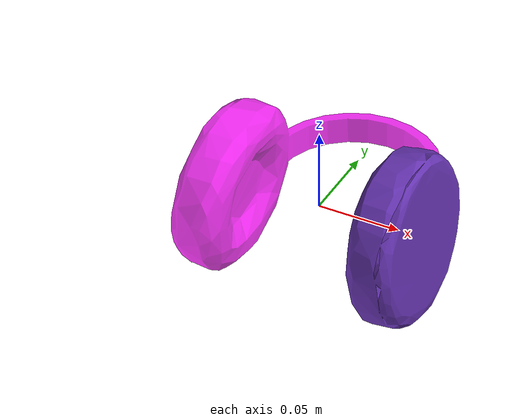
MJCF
<?xml version="1.0" encoding="utf-8"?>
<mujoco model="top_watertight_tiny">

  <asset>

    <mesh file="top_watertight_tiny.obj"/>

    <mesh file="top_watertight_tiny_collision_0.obj"/>

    <mesh file="top_watertight_tiny_collision_1.obj"/>

    <mesh file="top_watertight_tiny_collision_2.obj"/>

    <mesh file="top_watertight_tiny_collision_3.obj"/>

    <mesh file="top_watertight_tiny_collision_4.obj"/>

    <mesh file="top_watertight_tiny_collision_5.obj"/>

    <mesh file="top_watertight_tiny_collision_6.obj"/>

    <mesh file="top_watertight_tiny_collision_7.obj"/>

    <mesh file="top_watertight_tiny_collision_8.obj"/>

    <mesh file="top_watertight_tiny_collision_9.obj"/>

    <mesh file="top_watertight_tiny_collision_10.obj"/>

    <mesh file="top_watertight_tiny_collision_11.obj"/>

    <mesh file="top_watertight_tiny_collision_12.obj"/>

    <mesh file="top_watertight_tiny_collision_13.obj"/>

    <mesh file="top_watertight_tiny_collision_14.obj"/>

    <mesh file="top_watertight_tiny_collision_15.obj"/>

    <mesh file="top_watertight_tiny_collision_16.obj"/>

    <mesh file="top_watertight_tiny_collision_17.obj"/>

    <mesh file="top_watertight_tiny_collision_18.obj"/>

    <mesh file="top_watertight_tiny_collision_19.obj"/>

    <mesh file="top_watertight_tiny_collision_20.obj"/>

    <mesh file="top_watertight_tiny_collision_21.obj"/>

    <mesh file="top_watertight_tiny_collision_22.obj"/>

    <mesh file="top_watertight_tiny_collision_23.obj"/>

    <mesh file="top_watertight_tiny_collision_24.obj"/>

    <mesh file="top_watertight_tiny_collision_25.obj"/>

    <mesh file="top_watertight_tiny_collision_26.obj"/>

    <mesh file="top_watertight_tiny_collision_27.obj"/>

    <mesh file="top_watertight_tiny_collision_28.obj"/>

    <mesh file="top_watertight_tiny_collision_29.obj"/>

    <mesh file="top_watertight_tiny_collision_30.obj"/>

    <mesh file="top_watertight_tiny_collision_31.obj"/>

    <mesh file="top_watertight_tiny_collision_32.obj"/>

    <mesh file="top_watertight_tiny_collision_33.obj"/>

    <mesh file="top_watertight_tiny_collision_34.obj"/>

    <mesh file="top_watertight_tiny_collision_35.obj"/>

    <mesh file="top_watertight_tiny_collision_36.obj"/>

    <mesh file="top_watertight_tiny_collision_37.obj"/>

    <mesh file="top_watertight_tiny_collision_38.obj"/>

    <mesh file="top_watertight_tiny_collision_39.obj"/>

    <mesh file="top_watertight_tiny_collision_40.obj"/>

    <mesh file="top_watertight_tiny_collision_41.obj"/>

    <mesh file="top_watertight_tiny_collision_42.obj"/>

    <mesh file="top_watertight_tiny_collision_43.obj"/>

    <mesh file="top_watertight_tiny_collision_44.obj"/>

    <mesh file="top_watertight_tiny_collision_45.obj"/>

    <mesh file="top_watertight_tiny_collision_46.obj"/>

    <mesh file="top_watertight_tiny_collision_47.obj"/>

    <mesh file="top_watertight_tiny_collision_48.obj"/>

    <mesh file="top_watertight_tiny_collision_49.obj"/>

    <mesh file="top_watertight_tiny_collision_50.obj"/>

    <mesh file="top_watertight_tiny_collision_51.obj"/>

    <mesh file="top_watertight_tiny_collision_52.obj"/>

    <mesh file="top_watertight_tiny_collision_53.obj"/>

    <mesh file="top_watertight_tiny_collision_54.obj"/>

    <mesh file="top_watertight_tiny_collision_55.obj"/>

    <mesh file="top_watertight_tiny_collision_56.obj"/>

    <mesh file="top_watertight_tiny_collision_57.obj"/>

    <mesh file="top_watertight_tiny_collision_58.obj"/>

    <mesh file="top_watertight_tiny_collision_59.obj"/>

    <mesh file="top_watertight_tiny_collision_60.obj"/>

    <mesh file="top_watertight_tiny_collision_61.obj"/>

    <mesh file="top_watertight_tiny_collision_62.obj"/>

    <mesh file="top_watertight_tiny_collision_63.obj"/>

    <mesh file="top_watertight_tiny_collision_64.obj"/>

    <mesh file="top_watertight_tiny_collision_65.obj"/>

    <mesh file="top_watertight_tiny_collision_66.obj"/>

    <mesh file="top_watertight_tiny_collision_67.obj"/>

    <mesh file="top_watertight_tiny_collision_68.obj"/>

    <mesh file="top_watertight_tiny_collision_69.obj"/>

    <mesh file="top_watertight_tiny_collision_70.obj"/>

    <mesh file="top_watertight_tiny_collision_71.obj"/>

    <mesh file="top_watertight_tiny_collision_72.obj"/>

    <mesh file="top_watertight_tiny_collision_73.obj"/>

    <mesh file="top_watertight_tiny_collision_74.obj"/>

    <mesh file="top_watertight_tiny_collision_75.obj"/>

    <mesh file="top_watertight_tiny_collision_76.obj"/>

    <mesh file="top_watertight_tiny_collision_77.obj"/>

    <mesh file="top_watertight_tiny_collision_78.obj"/>

    <mesh file="top_watertight_tiny_collision_79.obj"/>

    <mesh file="top_watertight_tiny_collision_80.obj"/>

    <mesh file="top_watertight_tiny_collision_81.obj"/>

    <mesh file="top_watertight_tiny_collision_82.obj"/>

    <mesh file="top_watertight_tiny_collision_83.obj"/>

    <mesh file="top_watertight_tiny_collision_84.obj"/>

    <mesh file="top_watertight_tiny_collision_85.obj"/>

    <mesh file="top_watertight_tiny_collision_86.obj"/>

    <mesh file="top_watertight_tiny_collision_87.obj"/>

    <mesh file="top_watertight_tiny_collision_88.obj"/>

    <mesh file="top_watertight_tiny_collision_89.obj"/>

    <mesh file="top_watertight_tiny_collision_90.obj"/>

    <mesh file="top_watertight_tiny_collision_91.obj"/>

    <mesh file="top_watertight_tiny_collision_92.obj"/>

    <mesh file="top_watertight_tiny_collision_93.obj"/>

    <mesh file="bottom_watertight_tiny.obj"/>

    <mesh file="bottom_watertight_tiny_collision_0.obj"/>

    <mesh file="bottom_watertight_tiny_collision_1.obj"/>

    <mesh file="bottom_watertight_tiny_collision_2.obj"/>

    <mesh file="bottom_watertight_tiny_collision_3.obj"/>

    <mesh file="bottom_watertight_tiny_collision_4.obj"/>

    <mesh file="bottom_watertight_tiny_collision_5.obj"/>

    <mesh file="bottom_watertight_tiny_collision_6.obj"/>

    <mesh file="bottom_watertight_tiny_collision_7.obj"/>

    <mesh file="bottom_watertight_tiny_collision_8.obj"/>

    <mesh file="bottom_watertight_tiny_collision_9.obj"/>

    <mesh file="bottom_watertight_tiny_collision_10.obj"/>

    <mesh file="bottom_watertight_tiny_collision_11.obj"/>

    <mesh file="bottom_watertight_tiny_collision_12.obj"/>

    <mesh file="bottom_watertight_tiny_collision_13.obj"/>

    <mesh file="bottom_watertight_tiny_collision_14.obj"/>

    <mesh file="bottom_watertight_tiny_collision_15.obj"/>

    <mesh file="bottom_watertight_tiny_collision_16.obj"/>

    <mesh file="bottom_watertight_tiny_collision_17.obj"/>

    <mesh file="bottom_watertight_tiny_collision_18.obj"/>

    <mesh file="bottom_watertight_tiny_collision_19.obj"/>

    <mesh file="bottom_watertight_tiny_collision_20.obj"/>

    <mesh file="bottom_watertight_tiny_collision_21.obj"/>

    <mesh file="bottom_watertight_tiny_collision_22.obj"/>

    <mesh file="bottom_watertight_tiny_collision_23.obj"/>

    <mesh file="bottom_watertight_tiny_collision_24.obj"/>

    <mesh file="bottom_watertight_tiny_collision_25.obj"/>

    <mesh file="bottom_watertight_tiny_collision_26.obj"/>

    <mesh file="bottom_watertight_tiny_collision_27.obj"/>

    <mesh file="bottom_watertight_tiny_collision_28.obj"/>

    <mesh file="bottom_watertight_tiny_collision_29.obj"/>

    <mesh file="bottom_watertight_tiny_collision_30.obj"/>

    <mesh file="bottom_watertight_tiny_collision_31.obj"/>

    <mesh file="bottom_watertight_tiny_collision_32.obj"/>

    <mesh file="bottom_watertight_tiny_collision_33.obj"/>

    <mesh file="bottom_watertight_tiny_collision_34.obj"/>

    <mesh file="bottom_watertight_tiny_collision_35.obj"/>

    <mesh file="bottom_watertight_tiny_collision_36.obj"/>

    <mesh file="bottom_watertight_tiny_collision_37.obj"/>

    <mesh file="bottom_watertight_tiny_collision_38.obj"/>

    <mesh file="bottom_watertight_tiny_collision_39.obj"/>

    <mesh file="bottom_watertight_tiny_collision_40.obj"/>

    <mesh file="bottom_watertight_tiny_collision_41.obj"/>

    <mesh file="bottom_watertight_tiny_collision_42.obj"/>

    <mesh file="bottom_watertight_tiny_collision_43.obj"/>

    <mesh file="bottom_watertight_tiny_collision_44.obj"/>

    <mesh file="bottom_watertight_tiny_collision_45.obj"/>

    <mesh file="bottom_watertight_tiny_collision_46.obj"/>

    <mesh file="bottom_watertight_tiny_collision_47.obj"/>

    <mesh file="bottom_watertight_tiny_collision_48.obj"/>

    <mesh file="bottom_watertight_tiny_collision_49.obj"/>

    <mesh file="bottom_watertight_tiny_collision_50.obj"/>

    <mesh file="bottom_watertight_tiny_collision_51.obj"/>

    <mesh file="bottom_watertight_tiny_collision_52.obj"/>

    <mesh file="bottom_watertight_tiny_collision_53.obj"/>

    <mesh file="bottom_watertight_tiny_collision_54.obj"/>

    <mesh file="bottom_watertight_tiny_collision_55.obj"/>

    <mesh file="bottom_watertight_tiny_collision_56.obj"/>

    <mesh file="bottom_watertight_tiny_collision_57.obj"/>

    <mesh file="bottom_watertight_tiny_collision_58.obj"/>

    <mesh file="bottom_watertight_tiny_collision_59.obj"/>

    <mesh file="bottom_watertight_tiny_collision_60.obj"/>

    <mesh file="bottom_watertight_tiny_collision_61.obj"/>

    <mesh file="bottom_watertight_tiny_collision_62.obj"/>

    <mesh file="bottom_watertight_tiny_collision_63.obj"/>

    <mesh file="bottom_watertight_tiny_collision_64.obj"/>

    <mesh file="bottom_watertight_tiny_collision_65.obj"/>

    <mesh file="bottom_watertight_tiny_collision_66.obj"/>

    <mesh file="bottom_watertight_tiny_collision_67.obj"/>

    <mesh file="bottom_watertight_tiny_collision_68.obj"/>

    <mesh file="bottom_watertight_tiny_collision_69.obj"/>

    <mesh file="bottom_watertight_tiny_collision_70.obj"/>

  </asset>

  <worldbody>

    <body name="top_watertight_tiny">

      <freejoint/>

      <geom mesh="top_watertight_tiny" group="2" type="mesh" rgba="0.4 0.2 0.7 1" contype="0" conaffinity="0" solimp="0.90 0.95 0.001" solref="0.02 1.0" density="100" friction="0.95 0.4 0.3"/>

      <geom mesh="top_watertight_tiny_collision_0" rgba="0.8647193783384594 0.33576148085317636 0.4079934941814074 1" group="3" type="mesh" solimp="0.90 0.95 0.001" solref="0.02 1.0" density="100" friction="0.95 0.4 0.3"/>

      <geom mesh="top_watertight_tiny_collision_1" rgba="0.528550080328331 0.35766435567508625 0.10188275859030937 1" group="3" type="mesh" solimp="0.90 0.95 0.001" solref="0.02 1.0" density="100" friction="0.95 0.4 0.3"/>

      <geom mesh="top_watertight_tiny_collision_2" rgba="0.03384435544304387 0.7320089182326934 0.32427282574452265 1" group="3" type="mesh" solimp="0.90 0.95 0.001" solref="0.02 1.0" density="100" friction="0.95 0.4 0.3"/>

      <geom mesh="top_watertight_tiny_collision_3" rgba="0.9440928132375778 0.8330026005480046 0.060374399849493554 1" group="3" type="mesh" solimp="0.90 0.95 0.001" solref="0.02 1.0" density="100" friction="0.95 0.4 0.3"/>

      <geom mesh="top_watertight_tiny_collision_4" rgba="0.8093859365646315 0.48419872301530575 0.09471661942208287 1" group="3" type="mesh" solimp="0.90 0.95 0.001" solref="0.02 1.0" density="100" friction="0.95 0.4 0.3"/>

      <geom mesh="top_watertight_tiny_collision_5" rgba="0.25114060428213514 0.9963850581718432 0.8771422606535896 1" group="3" type="mesh" solimp="0.90 0.95 0.001" solref="0.02 1.0" density="100" friction="0.95 0.4 0.3"/>

      <geom mesh="top_watertight_tiny_collision_6" rgba="0.9228183097813618 0.38894122224042227 0.7916740042872067 1" group="3" type="mesh" solimp="0.90 0.95 0.001" solref="0.02 1.0" density="100" friction="0.95 0.4 0.3"/>

      <geom mesh="top_watertight_tiny_collision_7" rgba="0.7093042905231305 0.18651658322473852 0.8777501765767837 1" group="3" type="mesh" solimp="0.90 0.95 0.001" solref="0.02 1.0" density="100" friction="0.95 0.4 0.3"/>

      <geom mesh="top_watertight_tiny_collision_8" rgba="0.661569435215574 0.2433233902448877 0.5619440075468588 1" group="3" type="mesh" solimp="0.90 0.95 0.001" solref="0.02 1.0" density="100" friction="0.95 0.4 0.3"/>

      <geom mesh="top_watertight_tiny_collision_9" rgba="0.955670300439233 0.7529269733951579 0.9669353928287964 1" group="3" type="mesh" solimp="0.90 0.95 0.001" solref="0.02 1.0" density="100" friction="0.95 0.4 0.3"/>

      <geom mesh="top_watertight_tiny_collision_10" rgba="0.1041776657742699 0.32675096686603766 0.373316598992005 1" group="3" type="mesh" solimp="0.90 0.95 0.001" solref="0.02 1.0" density="100" friction="0.95 0.4 0.3"/>

      <geom mesh="top_watertight_tiny_collision_11" rgba="0.16620738765355203 0.1907630227101299 0.14385136396500275 1" group="3" type="mesh" solimp="0.90 0.95 0.001" solref="0.02 1.0" density="100" friction="0.95 0.4 0.3"/>

      <geom mesh="top_watertight_tiny_collision_12" rgba="0.7034629132441527 0.935782309415103 0.15990943316567197 1" group="3" type="mesh" solimp="0.90 0.95 0.001" solref="0.02 1.0" density="100" friction="0.95 0.4 0.3"/>

      <geom mesh="top_watertight_tiny_collision_13" rgba="0.9221730761178841 0.3798553815064316 0.6652052604392171 1" group="3" type="mesh" solimp="0.90 0.95 0.001" solref="0.02 1.0" density="100" friction="0.95 0.4 0.3"/>

      <geom mesh="top_watertight_tiny_collision_14" rgba="0.10588604740659457 0.9918725154194769 0.8067958898505273 1" group="3" type="mesh" solimp="0.90 0.95 0.001" solref="0.02 1.0" density="100" friction="0.95 0.4 0.3"/>

      <geom mesh="top_watertight_tiny_collision_15" rgba="0.7754279174660884 0.4431806722626427 0.5487353522542817 1" group="3" type="mesh" solimp="0.90 0.95 0.001" solref="0.02 1.0" density="100" friction="0.95 0.4 0.3"/>

      <geom mesh="top_watertight_tiny_collision_16" rgba="0.2825218980539137 0.3717540329901148 0.10752382605312294 1" group="3" type="mesh" solimp="0.90 0.95 0.001" solref="0.02 1.0" density="100" friction="0.95 0.4 0.3"/>

      <geom mesh="top_watertight_tiny_collision_17" rgba="0.7937588892151363 0.2641538284600089 0.8824772982476524 1" group="3" type="mesh" solimp="0.90 0.95 0.001" solref="0.02 1.0" density="100" friction="0.95 0.4 0.3"/>

      <geom mesh="top_watertight_tiny_collision_18" rgba="0.6283304776001755 0.2224088108873784 0.29865914967610896 1" group="3" type="mesh" solimp="0.90 0.95 0.001" solref="0.02 1.0" density="100" friction="0.95 0.4 0.3"/>

      <geom mesh="top_watertight_tiny_collision_19" rgba="0.4561152078741697 0.22510582503589316 0.14679389784332175 1" group="3" type="mesh" solimp="0.90 0.95 0.001" solref="0.02 1.0" density="100" friction="0.95 0.4 0.3"/>

      <geom mesh="top_watertight_tiny_collision_20" rgba="0.9648325747641612 0.7984308898621152 0.2010238917021745 1" group="3" type="mesh" solimp="0.90 0.95 0.001" solref="0.02 1.0" density="100" friction="0.95 0.4 0.3"/>

      <geom mesh="top_watertight_tiny_collision_21" rgba="0.25960451170108056 0.6275813615868565 0.3288140286930109 1" group="3" type="mesh" solimp="0.90 0.95 0.001" solref="0.02 1.0" density="100" friction="0.95 0.4 0.3"/>

      <geom mesh="top_watertight_tiny_collision_22" rgba="0.5732446126504561 0.13756324079841054 0.12611974056166086 1" group="3" type="mesh" solimp="0.90 0.95 0.001" solref="0.02 1.0" density="100" friction="0.95 0.4 0.3"/>

      <geom mesh="top_watertight_tiny_collision_23" rgba="0.5666153490801499 0.37670848428723436 0.5176152444876752 1" group="3" type="mesh" solimp="0.90 0.95 0.001" solref="0.02 1.0" density="100" friction="0.95 0.4 0.3"/>

      <geom mesh="top_watertight_tiny_collision_24" rgba="0.47926577597418407 0.45323160062059076 0.24319942465404198 1" group="3" type="mesh" solimp="0.90 0.95 0.001" solref="0.02 1.0" density="100" friction="0.95 0.4 0.3"/>

      <geom mesh="top_watertight_tiny_collision_25" rgba="0.8343730973964236 0.9233363752947646 0.4771575028743318 1" group="3" type="mesh" solimp="0.90 0.95 0.001" solref="0.02 1.0" density="100" friction="0.95 0.4 0.3"/>

      <geom mesh="top_watertight_tiny_collision_26" rgba="0.5356048168996326 0.9694826013589976 0.6814628350123108 1" group="3" type="mesh" solimp="0.90 0.95 0.001" solref="0.02 1.0" density="100" friction="0.95 0.4 0.3"/>

      <geom mesh="top_watertight_tiny_collision_27" rgba="0.5291326388851241 0.6156527514454352 0.9455192447930247 1" group="3" type="mesh" solimp="0.90 0.95 0.001" solref="0.02 1.0" density="100" friction="0.95 0.4 0.3"/>

      <geom mesh="top_watertight_tiny_collision_28" rgba="0.9343719604299673 0.8722191755501639 0.49919941011148206 1" group="3" type="mesh" solimp="0.90 0.95 0.001" solref="0.02 1.0" density="100" friction="0.95 0.4 0.3"/>

      <geom mesh="top_watertight_tiny_collision_29" rgba="0.2135082074082595 0.23953771043774197 0.33558412522830083 1" group="3" type="mesh" solimp="0.90 0.95 0.001" solref="0.02 1.0" density="100" friction="0.95 0.4 0.3"/>

      <geom mesh="top_watertight_tiny_collision_30" rgba="0.3685257608040955 0.6393118166882751 0.8699391031341503 1" group="3" type="mesh" solimp="0.90 0.95 0.001" solref="0.02 1.0" density="100" friction="0.95 0.4 0.3"/>

      <geom mesh="top_watertight_tiny_collision_31" rgba="0.17988231364187224 0.04241260901741606 0.24041204255408566 1" group="3" type="mesh" solimp="0.90 0.95 0.001" solref="0.02 1.0" density="100" friction="0.95 0.4 0.3"/>

      <geom mesh="top_watertight_tiny_collision_32" rgba="0.32245952256050736 0.9612520057921484 0.5462339222742242 1" group="3" type="mesh" solimp="0.90 0.95 0.001" solref="0.02 1.0" density="100" friction="0.95 0.4 0.3"/>

      <geom mesh="top_watertight_tiny_collision_33" rgba="0.756138207128659 0.368049434206973 0.8079697723603954 1" group="3" type="mesh" solimp="0.90 0.95 0.001" solref="0.02 1.0" density="100" friction="0.95 0.4 0.3"/>

      <geom mesh="top_watertight_tiny_collision_34" rgba="0.8340037621123088 0.8103179853208475 0.08716131102136382 1" group="3" type="mesh" solimp="0.90 0.95 0.001" solref="0.02 1.0" density="100" friction="0.95 0.4 0.3"/>

      <geom mesh="top_watertight_tiny_collision_35" rgba="0.5892727067203336 0.4568399801779015 0.3650085384039806 1" group="3" type="mesh" solimp="0.90 0.95 0.001" solref="0.02 1.0" density="100" friction="0.95 0.4 0.3"/>

      <geom mesh="top_watertight_tiny_collision_36" rgba="0.0309537137910062 0.10340048802585289 0.49238773068860653 1" group="3" type="mesh" solimp="0.90 0.95 0.001" solref="0.02 1.0" density="100" friction="0.95 0.4 0.3"/>

      <geom mesh="top_watertight_tiny_collision_37" rgba="0.6804935857977379 0.10801934641952882 0.4953848954625466 1" group="3" type="mesh" solimp="0.90 0.95 0.001" solref="0.02 1.0" density="100" friction="0.95 0.4 0.3"/>

      <geom mesh="top_watertight_tiny_collision_38" rgba="0.5464706239909788 0.7278795537140079 0.8769166439527152 1" group="3" type="mesh" solimp="0.90 0.95 0.001" solref="0.02 1.0" density="100" friction="0.95 0.4 0.3"/>

      <geom mesh="top_watertight_tiny_collision_39" rgba="0.22275969169406462 0.5823654031154737 0.28882156622473965 1" group="3" type="mesh" solimp="0.90 0.95 0.001" solref="0.02 1.0" density="100" friction="0.95 0.4 0.3"/>

      <geom mesh="top_watertight_tiny_collision_40" rgba="0.669036389375991 0.3624492462422282 0.8156857979187241 1" group="3" type="mesh" solimp="0.90 0.95 0.001" solref="0.02 1.0" density="100" friction="0.95 0.4 0.3"/>

      <geom mesh="top_watertight_tiny_collision_41" rgba="0.961147326713572 0.7388137878154969 0.47317781755038335 1" group="3" type="mesh" solimp="0.90 0.95 0.001" solref="0.02 1.0" density="100" friction="0.95 0.4 0.3"/>

      <geom mesh="top_watertight_tiny_collision_42" rgba="0.5947718881740977 0.5864250574305508 0.05696451408535763 1" group="3" type="mesh" solimp="0.90 0.95 0.001" solref="0.02 1.0" density="100" friction="0.95 0.4 0.3"/>

      <geom mesh="top_watertight_tiny_collision_43" rgba="0.8333760147490425 0.7260480031613233 0.4590545208786271 1" group="3" type="mesh" solimp="0.90 0.95 0.001" solref="0.02 1.0" density="100" friction="0.95 0.4 0.3"/>

      <geom mesh="top_watertight_tiny_collision_44" rgba="0.9870670681096123 0.6164857411904762 0.9954249315871574 1" group="3" type="mesh" solimp="0.90 0.95 0.001" solref="0.02 1.0" density="100" friction="0.95 0.4 0.3"/>

      <geom mesh="top_watertight_tiny_collision_45" rgba="0.12753893307380804 0.29472433887501337 0.1561241548318546 1" group="3" type="mesh" solimp="0.90 0.95 0.001" solref="0.02 1.0" density="100" friction="0.95 0.4 0.3"/>

      <geom mesh="top_watertight_tiny_collision_46" rgba="0.6627444355067069 0.6797569789549704 0.23538498933207974 1" group="3" type="mesh" solimp="0.90 0.95 0.001" solref="0.02 1.0" density="100" friction="0.95 0.4 0.3"/>

      <geom mesh="top_watertight_tiny_collision_47" rgba="0.9160736911819106 0.5305449853740661 0.08627583804389327 1" group="3" type="mesh" solimp="0.90 0.95 0.001" solref="0.02 1.0" density="100" friction="0.95 0.4 0.3"/>

      <geom mesh="top_watertight_tiny_collision_48" rgba="0.8435466219970081 0.5866118618216585 0.773276637945736 1" group="3" type="mesh" solimp="0.90 0.95 0.001" solref="0.02 1.0" density="100" friction="0.95 0.4 0.3"/>

      <geom mesh="top_watertight_tiny_collision_49" rgba="0.7412388547423748 0.12668813755023323 0.6848919431350431 1" group="3" type="mesh" solimp="0.90 0.95 0.001" solref="0.02 1.0" density="100" friction="0.95 0.4 0.3"/>

      <geom mesh="top_watertight_tiny_collision_50" rgba="0.15480545096577703 0.4982494059763142 0.6948103621324017 1" group="3" type="mesh" solimp="0.90 0.95 0.001" solref="0.02 1.0" density="100" friction="0.95 0.4 0.3"/>

      <geom mesh="top_watertight_tiny_collision_51" rgba="0.9385282171347848 0.5898683869515532 0.6758886270751921 1" group="3" type="mesh" solimp="0.90 0.95 0.001" solref="0.02 1.0" density="100" friction="0.95 0.4 0.3"/>

      <geom mesh="top_watertight_tiny_collision_52" rgba="0.835091762175315 0.6820298938804074 0.42963405627775464 1" group="3" type="mesh" solimp="0.90 0.95 0.001" solref="0.02 1.0" density="100" friction="0.95 0.4 0.3"/>

      <geom mesh="top_watertight_tiny_collision_53" rgba="0.3006596147362205 0.7172584418146251 0.07188595151856325 1" group="3" type="mesh" solimp="0.90 0.95 0.001" solref="0.02 1.0" density="100" friction="0.95 0.4 0.3"/>

      <geom mesh="top_watertight_tiny_collision_54" rgba="0.7013862513770573 0.8133358869129828 0.3988906991640846 1" group="3" type="mesh" solimp="0.90 0.95 0.001" solref="0.02 1.0" density="100" friction="0.95 0.4 0.3"/>

      <geom mesh="top_watertight_tiny_collision_55" rgba="0.5880681564581569 0.06313992090005549 0.362419068200006 1" group="3" type="mesh" solimp="0.90 0.95 0.001" solref="0.02 1.0" density="100" friction="0.95 0.4 0.3"/>

      <geom mesh="top_watertight_tiny_collision_56" rgba="0.8121957433111657 0.03541381340489391 0.1675432879600558 1" group="3" type="mesh" solimp="0.90 0.95 0.001" solref="0.02 1.0" density="100" friction="0.95 0.4 0.3"/>

      <geom mesh="top_watertight_tiny_collision_57" rgba="0.6876141426118819 0.12972864501000847 0.21547901149298865 1" group="3" type="mesh" solimp="0.90 0.95 0.001" solref="0.02 1.0" density="100" friction="0.95 0.4 0.3"/>

      <geom mesh="top_watertight_tiny_collision_58" rgba="0.22588818386835086 0.32441577256728793 0.8475094018746478 1" group="3" type="mesh" solimp="0.90 0.95 0.001" solref="0.02 1.0" density="100" friction="0.95 0.4 0.3"/>

      <geom mesh="top_watertight_tiny_collision_59" rgba="0.22604666433744003 0.825656710712909 0.11575386399097343 1" group="3" type="mesh" solimp="0.90 0.95 0.001" solref="0.02 1.0" density="100" friction="0.95 0.4 0.3"/>

      <geom mesh="top_watertight_tiny_collision_60" rgba="0.11739321679016113 0.16931550218464964 0.6213276125864854 1" group="3" type="mesh" solimp="0.90 0.95 0.001" solref="0.02 1.0" density="100" friction="0.95 0.4 0.3"/>

      <geom mesh="top_watertight_tiny_collision_61" rgba="0.6898179171256339 0.7712274923340006 0.5481894342650572 1" group="3" type="mesh" solimp="0.90 0.95 0.001" solref="0.02 1.0" density="100" friction="0.95 0.4 0.3"/>

      <geom mesh="top_watertight_tiny_collision_62" rgba="0.46816261651646773 0.4432462742743659 0.14772579754445714 1" group="3" type="mesh" solimp="0.90 0.95 0.001" solref="0.02 1.0" density="100" friction="0.95 0.4 0.3"/>

      <geom mesh="top_watertight_tiny_collision_63" rgba="0.30929279940379595 0.190603480394266 0.013204108351597132 1" group="3" type="mesh" solimp="0.90 0.95 0.001" solref="0.02 1.0" density="100" friction="0.95 0.4 0.3"/>

      <geom mesh="top_watertight_tiny_collision_64" rgba="0.6360061590656916 0.49423767505677074 0.08621964814335814 1" group="3" type="mesh" solimp="0.90 0.95 0.001" solref="0.02 1.0" density="100" friction="0.95 0.4 0.3"/>

      <geom mesh="top_watertight_tiny_collision_65" rgba="0.7531951299730278 0.6728190180962146 0.719621408781027 1" group="3" type="mesh" solimp="0.90 0.95 0.001" solref="0.02 1.0" density="100" friction="0.95 0.4 0.3"/>

      <geom mesh="top_watertight_tiny_collision_66" rgba="0.7749908101180436 0.9093794903642795 0.7387828409154696 1" group="3" type="mesh" solimp="0.90 0.95 0.001" solref="0.02 1.0" density="100" friction="0.95 0.4 0.3"/>

      <geom mesh="top_watertight_tiny_collision_67" rgba="0.3536728511705446 0.45147859509982924 0.7999114647696277 1" group="3" type="mesh" solimp="0.90 0.95 0.001" solref="0.02 1.0" density="100" friction="0.95 0.4 0.3"/>

      <geom mesh="top_watertight_tiny_collision_68" rgba="0.7917270496022406 0.3005956446229009 0.5833838930749562 1" group="3" type="mesh" solimp="0.90 0.95 0.001" solref="0.02 1.0" density="100" friction="0.95 0.4 0.3"/>

      <geom mesh="top_watertight_tiny_collision_69" rgba="0.4500034839288869 0.15127972070432416 0.6154013843801865 1" group="3" type="mesh" solimp="0.90 0.95 0.001" solref="0.02 1.0" density="100" friction="0.95 0.4 0.3"/>

      <geom mesh="top_watertight_tiny_collision_70" rgba="0.8026864405046642 0.9827334773741597 0.4291900561180052 1" group="3" type="mesh" solimp="0.90 0.95 0.001" solref="0.02 1.0" density="100" friction="0.95 0.4 0.3"/>

      <geom mesh="top_watertight_tiny_collision_71" rgba="0.5682052580889434 0.7173007424933974 0.8428930408899423 1" group="3" type="mesh" solimp="0.90 0.95 0.001" solref="0.02 1.0" density="100" friction="0.95 0.4 0.3"/>

      <geom mesh="top_watertight_tiny_collision_72" rgba="0.5616679042229795 0.299255419568375 0.5854618868248215 1" group="3" type="mesh" solimp="0.90 0.95 0.001" solref="0.02 1.0" density="100" friction="0.95 0.4 0.3"/>

      <geom mesh="top_watertight_tiny_collision_73" rgba="0.011060479383962152 0.6149995828374122 0.3866764803731536 1" group="3" type="mesh" solimp="0.90 0.95 0.001" solref="0.02 1.0" density="100" friction="0.95 0.4 0.3"/>

      <geom mesh="top_watertight_tiny_collision_74" rgba="0.22257147214839457 0.9051954718850066 0.43734826329028387 1" group="3" type="mesh" solimp="0.90 0.95 0.001" solref="0.02 1.0" density="100" friction="0.95 0.4 0.3"/>

      <geom mesh="top_watertight_tiny_collision_75" rgba="0.8254813956522605 0.4737910393568684 0.6208116339925025 1" group="3" type="mesh" solimp="0.90 0.95 0.001" solref="0.02 1.0" density="100" friction="0.95 0.4 0.3"/>

      <geom mesh="top_watertight_tiny_collision_76" rgba="0.303656509046349 0.16798320755883678 0.2285590341597008 1" group="3" type="mesh" solimp="0.90 0.95 0.001" solref="0.02 1.0" density="100" friction="0.95 0.4 0.3"/>

      <geom mesh="top_watertight_tiny_collision_77" rgba="0.0558260247213197 0.8653119018469271 0.15582672515214924 1" group="3" type="mesh" solimp="0.90 0.95 0.001" solref="0.02 1.0" density="100" friction="0.95 0.4 0.3"/>

      <geom mesh="top_watertight_tiny_collision_78" rgba="0.9407523116859547 0.7652630057965336 0.6364949873836567 1" group="3" type="mesh" solimp="0.90 0.95 0.001" solref="0.02 1.0" density="100" friction="0.95 0.4 0.3"/>

      <geom mesh="top_watertight_tiny_collision_79" rgba="0.8191611138558741 0.31871200763384333 0.0005006323285894343 1" group="3" type="mesh" solimp="0.90 0.95 0.001" solref="0.02 1.0" density="100" friction="0.95 0.4 0.3"/>

      <geom mesh="top_watertight_tiny_collision_80" rgba="0.8448482059969293 0.8888110432155811 0.8161402284511364 1" group="3" type="mesh" solimp="0.90 0.95 0.001" solref="0.02 1.0" density="100" friction="0.95 0.4 0.3"/>

      <geom mesh="top_watertight_tiny_collision_81" rgba="0.7537934333946256 0.10741428588822788 0.7477670137175881 1" group="3" type="mesh" solimp="0.90 0.95 0.001" solref="0.02 1.0" density="100" friction="0.95 0.4 0.3"/>

      <geom mesh="top_watertight_tiny_collision_82" rgba="0.20200127199249363 0.2765947542437144 0.8637472282500278 1" group="3" type="mesh" solimp="0.90 0.95 0.001" solref="0.02 1.0" density="100" friction="0.95 0.4 0.3"/>

      <geom mesh="top_watertight_tiny_collision_83" rgba="0.4286699596330332 0.7463311149664282 0.019369123211877448 1" group="3" type="mesh" solimp="0.90 0.95 0.001" solref="0.02 1.0" density="100" friction="0.95 0.4 0.3"/>

      <geom mesh="top_watertight_tiny_collision_84" rgba="0.9402408472849761 0.02731509156740497 0.03667460260500399 1" group="3" type="mesh" solimp="0.90 0.95 0.001" solref="0.02 1.0" density="100" friction="0.95 0.4 0.3"/>

      <geom mesh="top_watertight_tiny_collision_85" rgba="0.6534652774546132 0.7848882042784461 0.9486213673415906 1" group="3" type="mesh" solimp="0.90 0.95 0.001" solref="0.02 1.0" density="100" friction="0.95 0.4 0.3"/>

      <geom mesh="top_watertight_tiny_collision_86" rgba="0.31583261625080195 0.7495166957462537 0.8206483972729649 1" group="3" type="mesh" solimp="0.90 0.95 0.001" solref="0.02 1.0" density="100" friction="0.95 0.4 0.3"/>

      <geom mesh="top_watertight_tiny_collision_87" rgba="0.036569795934272675 0.7844428230485487 0.9994996138033008 1" group="3" type="mesh" solimp="0.90 0.95 0.001" solref="0.02 1.0" density="100" friction="0.95 0.4 0.3"/>

      <geom mesh="top_watertight_tiny_collision_88" rgba="0.6579189113315786 0.5433789921003288 0.7748325515957395 1" group="3" type="mesh" solimp="0.90 0.95 0.001" solref="0.02 1.0" density="100" friction="0.95 0.4 0.3"/>

      <geom mesh="top_watertight_tiny_collision_89" rgba="0.1961388095106843 0.007149564424364541 0.5016057848704802 1" group="3" type="mesh" solimp="0.90 0.95 0.001" solref="0.02 1.0" density="100" friction="0.95 0.4 0.3"/>

      <geom mesh="top_watertight_tiny_collision_90" rgba="0.0004023699936384073 0.38175844305252116 0.0824283343691602 1" group="3" type="mesh" solimp="0.90 0.95 0.001" solref="0.02 1.0" density="100" friction="0.95 0.4 0.3"/>

      <geom mesh="top_watertight_tiny_collision_91" rgba="0.6658557497896048 0.1816164155010348 0.9476472342804261 1" group="3" type="mesh" solimp="0.90 0.95 0.001" solref="0.02 1.0" density="100" friction="0.95 0.4 0.3"/>

      <geom mesh="top_watertight_tiny_collision_92" rgba="0.8748012386691095 0.23250883060915772 0.9259351945941221 1" group="3" type="mesh" solimp="0.90 0.95 0.001" solref="0.02 1.0" density="100" friction="0.95 0.4 0.3"/>

      <geom mesh="top_watertight_tiny_collision_93" rgba="0.020484960782319317 0.05307519133762029 0.8596627708539828 1" group="3" type="mesh" solimp="0.90 0.95 0.001" solref="0.02 1.0" density="100" friction="0.95 0.4 0.3"/>

      <body name="bottom_watertight_tiny">

        <geom mesh="bottom_watertight_tiny" group="2" type="mesh" rgba="1 0 1 0.8" contype="0" conaffinity="0" solimp="0.90 0.95 0.001" solref="0.02 1.0" density="100" friction="0.95 0.4 0.3"/>

        <geom mesh="bottom_watertight_tiny_collision_0" rgba="0.6592867806257849 0.3573174434217816 0.4608608192719037 1" group="3" type="mesh" solimp="0.90 0.95 0.001" solref="0.02 1.0" density="100" friction="0.95 0.4 0.3"/>

        <geom mesh="bottom_watertight_tiny_collision_1" rgba="0.6421418861547743 0.16549493223008138 0.39859282556516074 1" group="3" type="mesh" solimp="0.90 0.95 0.001" solref="0.02 1.0" density="100" friction="0.95 0.4 0.3"/>

        <geom mesh="bottom_watertight_tiny_collision_2" rgba="0.25903409442931447 0.5232087841733615 0.23000872851921306 1" group="3" type="mesh" solimp="0.90 0.95 0.001" solref="0.02 1.0" density="100" friction="0.95 0.4 0.3"/>

        <geom mesh="bottom_watertight_tiny_collision_3" rgba="0.8949484596101227 0.08846913889708086 0.49144810260029437 1" group="3" type="mesh" solimp="0.90 0.95 0.001" solref="0.02 1.0" density="100" friction="0.95 0.4 0.3"/>

        <geom mesh="bottom_watertight_tiny_collision_4" rgba="0.9504968530676672 0.15953292202656155 0.8555873943349893 1" group="3" type="mesh" solimp="0.90 0.95 0.001" solref="0.02 1.0" density="100" friction="0.95 0.4 0.3"/>

        <geom mesh="bottom_watertight_tiny_collision_5" rgba="0.0688235186758841 0.25812536121862717 0.7828257225277115 1" group="3" type="mesh" solimp="0.90 0.95 0.001" solref="0.02 1.0" density="100" friction="0.95 0.4 0.3"/>

        <geom mesh="bottom_watertight_tiny_collision_6" rgba="0.37358584604218315 0.24829431422860215 0.3319657404883527 1" group="3" type="mesh" solimp="0.90 0.95 0.001" solref="0.02 1.0" density="100" friction="0.95 0.4 0.3"/>

        <geom mesh="bottom_watertight_tiny_collision_7" rgba="0.5370268802678714 0.11432325926180176 0.7425296335953399 1" group="3" type="mesh" solimp="0.90 0.95 0.001" solref="0.02 1.0" density="100" friction="0.95 0.4 0.3"/>

        <geom mesh="bottom_watertight_tiny_collision_8" rgba="0.8094767638309782 0.8125778111373577 0.5462056215809941 1" group="3" type="mesh" solimp="0.90 0.95 0.001" solref="0.02 1.0" density="100" friction="0.95 0.4 0.3"/>

        <geom mesh="bottom_watertight_tiny_collision_9" rgba="0.9728540350593962 0.47191884233278003 0.4324836731604126 1" group="3" type="mesh" solimp="0.90 0.95 0.001" solref="0.02 1.0" density="100" friction="0.95 0.4 0.3"/>

        <geom mesh="bottom_watertight_tiny_collision_10" rgba="0.14151535819988081 0.835298778236344 0.14852168392855514 1" group="3" type="mesh" solimp="0.90 0.95 0.001" solref="0.02 1.0" density="100" friction="0.95 0.4 0.3"/>

        <geom mesh="bottom_watertight_tiny_collision_11" rgba="0.19657265281434577 0.03422679006173779 0.8627030313223141 1" group="3" type="mesh" solimp="0.90 0.95 0.001" solref="0.02 1.0" density="100" friction="0.95 0.4 0.3"/>

        <geom mesh="bottom_watertight_tiny_collision_12" rgba="0.5078409871926963 0.685863991520105 0.9638418949299303 1" group="3" type="mesh" solimp="0.90 0.95 0.001" solref="0.02 1.0" density="100" friction="0.95 0.4 0.3"/>

        <geom mesh="bottom_watertight_tiny_collision_13" rgba="0.5605819212673512 0.7629697077007458 0.8336782968436022 1" group="3" type="mesh" solimp="0.90 0.95 0.001" solref="0.02 1.0" density="100" friction="0.95 0.4 0.3"/>

        <geom mesh="bottom_watertight_tiny_collision_14" rgba="0.6591200649319167 0.7562925271720268 0.41302351799834836 1" group="3" type="mesh" solimp="0.90 0.95 0.001" solref="0.02 1.0" density="100" friction="0.95 0.4 0.3"/>

        <geom mesh="bottom_watertight_tiny_collision_15" rgba="0.05611794386696223 0.9159238374001146 0.390192273891508 1" group="3" type="mesh" solimp="0.90 0.95 0.001" solref="0.02 1.0" density="100" friction="0.95 0.4 0.3"/>

        <geom mesh="bottom_watertight_tiny_collision_16" rgba="0.23613102702801825 0.9569059396012705 0.8900672032648014 1" group="3" type="mesh" solimp="0.90 0.95 0.001" solref="0.02 1.0" density="100" friction="0.95 0.4 0.3"/>

        <geom mesh="bottom_watertight_tiny_collision_17" rgba="0.08942288681385013 0.6638038930548412 0.10806716244361636 1" group="3" type="mesh" solimp="0.90 0.95 0.001" solref="0.02 1.0" density="100" friction="0.95 0.4 0.3"/>

        <geom mesh="bottom_watertight_tiny_collision_18" rgba="0.7766423702092502 0.6738966531965168 0.8817285019527242 1" group="3" type="mesh" solimp="0.90 0.95 0.001" solref="0.02 1.0" density="100" friction="0.95 0.4 0.3"/>

        <geom mesh="bottom_watertight_tiny_collision_19" rgba="0.3530166305500758 0.8812191663436311 0.10974463077678964 1" group="3" type="mesh" solimp="0.90 0.95 0.001" solref="0.02 1.0" density="100" friction="0.95 0.4 0.3"/>

        <geom mesh="bottom_watertight_tiny_collision_20" rgba="0.7540260213148359 0.6454005959551651 0.8440433869612437 1" group="3" type="mesh" solimp="0.90 0.95 0.001" solref="0.02 1.0" density="100" friction="0.95 0.4 0.3"/>

        <geom mesh="bottom_watertight_tiny_collision_21" rgba="0.11902755166587586 0.08558143969071796 0.12165809542181827 1" group="3" type="mesh" solimp="0.90 0.95 0.001" solref="0.02 1.0" density="100" friction="0.95 0.4 0.3"/>

        <geom mesh="bottom_watertight_tiny_collision_22" rgba="0.021528967313941605 0.5789646903747939 0.020036392680441106 1" group="3" type="mesh" solimp="0.90 0.95 0.001" solref="0.02 1.0" density="100" friction="0.95 0.4 0.3"/>

        <geom mesh="bottom_watertight_tiny_collision_23" rgba="0.27630851757044284 0.4213725562395735 0.160200085569138 1" group="3" type="mesh" solimp="0.90 0.95 0.001" solref="0.02 1.0" density="100" friction="0.95 0.4 0.3"/>

        <geom mesh="bottom_watertight_tiny_collision_24" rgba="0.3324997585001045 0.5389742299984221 0.13399605959835337 1" group="3" type="mesh" solimp="0.90 0.95 0.001" solref="0.02 1.0" density="100" friction="0.95 0.4 0.3"/>

        <geom mesh="bottom_watertight_tiny_collision_25" rgba="0.10110214945671181 0.25269117889427695 0.8075444169842204 1" group="3" type="mesh" solimp="0.90 0.95 0.001" solref="0.02 1.0" density="100" friction="0.95 0.4 0.3"/>

        <geom mesh="bottom_watertight_tiny_collision_26" rgba="0.7607105244820503 0.8680255388937664 0.9139045711359064 1" group="3" type="mesh" solimp="0.90 0.95 0.001" solref="0.02 1.0" density="100" friction="0.95 0.4 0.3"/>

        <geom mesh="bottom_watertight_tiny_collision_27" rgba="0.27506251714338736 0.32780600103907076 0.43579511582823627 1" group="3" type="mesh" solimp="0.90 0.95 0.001" solref="0.02 1.0" density="100" friction="0.95 0.4 0.3"/>

        <geom mesh="bottom_watertight_tiny_collision_28" rgba="0.8041322794286316 0.223978211918462 0.1891117864382309 1" group="3" type="mesh" solimp="0.90 0.95 0.001" solref="0.02 1.0" density="100" friction="0.95 0.4 0.3"/>

        <geom mesh="bottom_watertight_tiny_collision_29" rgba="0.5345625270060843 0.2620257672368006 0.14391377821732565 1" group="3" type="mesh" solimp="0.90 0.95 0.001" solref="0.02 1.0" density="100" friction="0.95 0.4 0.3"/>

        <geom mesh="bottom_watertight_tiny_collision_30" rgba="0.652700749036207 0.9013728460390065 0.7938621784171178 1" group="3" type="mesh" solimp="0.90 0.95 0.001" solref="0.02 1.0" density="100" friction="0.95 0.4 0.3"/>

        <geom mesh="bottom_watertight_tiny_collision_31" rgba="0.233107953025806 0.9067150855921511 0.7995624393188909 1" group="3" type="mesh" solimp="0.90 0.95 0.001" solref="0.02 1.0" density="100" friction="0.95 0.4 0.3"/>

        <geom mesh="bottom_watertight_tiny_collision_32" rgba="0.12182268474486901 0.19359569573132007 0.2573811906136131 1" group="3" type="mesh" solimp="0.90 0.95 0.001" solref="0.02 1.0" density="100" friction="0.95 0.4 0.3"/>

        <geom mesh="bottom_watertight_tiny_collision_33" rgba="0.3491489947702512 0.32065117589064895 0.973535286835817 1" group="3" type="mesh" solimp="0.90 0.95 0.001" solref="0.02 1.0" density="100" friction="0.95 0.4 0.3"/>

        <geom mesh="bottom_watertight_tiny_collision_34" rgba="0.9751054938947744 0.25413113194175696 0.013716933502539774 1" group="3" type="mesh" solimp="0.90 0.95 0.001" solref="0.02 1.0" density="100" friction="0.95 0.4 0.3"/>

        <geom mesh="bottom_watertight_tiny_collision_35" rgba="0.6822468375553342 0.4928863216099175 0.7440045447992705 1" group="3" type="mesh" solimp="0.90 0.95 0.001" solref="0.02 1.0" density="100" friction="0.95 0.4 0.3"/>

        <geom mesh="bottom_watertight_tiny_collision_36" rgba="0.9086853365417981 0.8564702728131397 0.4803831430719998 1" group="3" type="mesh" solimp="0.90 0.95 0.001" solref="0.02 1.0" density="100" friction="0.95 0.4 0.3"/>

        <geom mesh="bottom_watertight_tiny_collision_37" rgba="0.2285100091055996 0.15915581390260802 0.7341051147287071 1" group="3" type="mesh" solimp="0.90 0.95 0.001" solref="0.02 1.0" density="100" friction="0.95 0.4 0.3"/>

        <geom mesh="bottom_watertight_tiny_collision_38" rgba="0.4986278842664654 0.06474358652168444 0.09652304981133153 1" group="3" type="mesh" solimp="0.90 0.95 0.001" solref="0.02 1.0" density="100" friction="0.95 0.4 0.3"/>

        <geom mesh="bottom_watertight_tiny_collision_39" rgba="0.9796670141819864 0.9554716003047216 0.3573939305046604 1" group="3" type="mesh" solimp="0.90 0.95 0.001" solref="0.02 1.0" density="100" friction="0.95 0.4 0.3"/>

        <geom mesh="bottom_watertight_tiny_collision_40" rgba="0.9551242444540308 0.5008812488243651 0.20924691897404046 1" group="3" type="mesh" solimp="0.90 0.95 0.001" solref="0.02 1.0" density="100" friction="0.95 0.4 0.3"/>

        <geom mesh="bottom_watertight_tiny_collision_41" rgba="0.33090623792070495 0.9612867806306604 0.44482835952169664 1" group="3" type="mesh" solimp="0.90 0.95 0.001" solref="0.02 1.0" density="100" friction="0.95 0.4 0.3"/>

        <geom mesh="bottom_watertight_tiny_collision_42" rgba="0.5672957824447522 0.06304569036363916 0.24746420713781958 1" group="3" type="mesh" solimp="0.90 0.95 0.001" solref="0.02 1.0" density="100" friction="0.95 0.4 0.3"/>

        <geom mesh="bottom_watertight_tiny_collision_43" rgba="0.03609926856072909 0.393234919066786 0.024993299604860075 1" group="3" type="mesh" solimp="0.90 0.95 0.001" solref="0.02 1.0" density="100" friction="0.95 0.4 0.3"/>

        <geom mesh="bottom_watertight_tiny_collision_44" rgba="0.5910013348488263 0.846569751437691 0.12936627037688575 1" group="3" type="mesh" solimp="0.90 0.95 0.001" solref="0.02 1.0" density="100" friction="0.95 0.4 0.3"/>

        <geom mesh="bottom_watertight_tiny_collision_45" rgba="0.9106012111475176 0.9211658025137599 0.19429614040614862 1" group="3" type="mesh" solimp="0.90 0.95 0.001" solref="0.02 1.0" density="100" friction="0.95 0.4 0.3"/>

        <geom mesh="bottom_watertight_tiny_collision_46" rgba="0.4288711160868284 0.10412284945914152 0.3812558676711314 1" group="3" type="mesh" solimp="0.90 0.95 0.001" solref="0.02 1.0" density="100" friction="0.95 0.4 0.3"/>

        <geom mesh="bottom_watertight_tiny_collision_47" rgba="0.0793794248896651 0.07393240226495779 0.885805332066064 1" group="3" type="mesh" solimp="0.90 0.95 0.001" solref="0.02 1.0" density="100" friction="0.95 0.4 0.3"/>

        <geom mesh="bottom_watertight_tiny_collision_48" rgba="0.7178019719899625 0.36129830817556396 0.893411022973129 1" group="3" type="mesh" solimp="0.90 0.95 0.001" solref="0.02 1.0" density="100" friction="0.95 0.4 0.3"/>

        <geom mesh="bottom_watertight_tiny_collision_49" rgba="0.6851786117966039 0.3481950455935501 0.0584061410235569 1" group="3" type="mesh" solimp="0.90 0.95 0.001" solref="0.02 1.0" density="100" friction="0.95 0.4 0.3"/>

        <geom mesh="bottom_watertight_tiny_collision_50" rgba="0.09966810639473556 0.7773511716378203 0.10893276346806535 1" group="3" type="mesh" solimp="0.90 0.95 0.001" solref="0.02 1.0" density="100" friction="0.95 0.4 0.3"/>

        <geom mesh="bottom_watertight_tiny_collision_51" rgba="0.5752198597059113 0.22503474921594024 0.338947682493685 1" group="3" type="mesh" solimp="0.90 0.95 0.001" solref="0.02 1.0" density="100" friction="0.95 0.4 0.3"/>

        <geom mesh="bottom_watertight_tiny_collision_52" rgba="0.8902021567310336 0.98499230576362 0.0639096778503091 1" group="3" type="mesh" solimp="0.90 0.95 0.001" solref="0.02 1.0" density="100" friction="0.95 0.4 0.3"/>

        <geom mesh="bottom_watertight_tiny_collision_53" rgba="0.9705941632631667 0.307470688468242 0.724748448143392 1" group="3" type="mesh" solimp="0.90 0.95 0.001" solref="0.02 1.0" density="100" friction="0.95 0.4 0.3"/>

        <geom mesh="bottom_watertight_tiny_collision_54" rgba="0.6308476270654964 0.6529685771449182 0.3865854905957351 1" group="3" type="mesh" solimp="0.90 0.95 0.001" solref="0.02 1.0" density="100" friction="0.95 0.4 0.3"/>

        <geom mesh="bottom_watertight_tiny_collision_55" rgba="0.004178558932416476 0.45283027836862955 0.6310015365483594 1" group="3" type="mesh" solimp="0.90 0.95 0.001" solref="0.02 1.0" density="100" friction="0.95 0.4 0.3"/>

        <geom mesh="bottom_watertight_tiny_collision_56" rgba="0.560174299707685 0.20063944795286548 0.25970338721429276 1" group="3" type="mesh" solimp="0.90 0.95 0.001" solref="0.02 1.0" density="100" friction="0.95 0.4 0.3"/>

        <geom mesh="bottom_watertight_tiny_collision_57" rgba="0.6328023366476663 0.3999465299854321 0.6771326481707299 1" group="3" type="mesh" solimp="0.90 0.95 0.001" solref="0.02 1.0" density="100" friction="0.95 0.4 0.3"/>

        <geom mesh="bottom_watertight_tiny_collision_58" rgba="0.13525170334962933 0.04723889382833468 0.2939188376179218 1" group="3" type="mesh" solimp="0.90 0.95 0.001" solref="0.02 1.0" density="100" friction="0.95 0.4 0.3"/>

        <geom mesh="bottom_watertight_tiny_collision_59" rgba="0.364744068596102 0.38290886325878704 0.4711993390576511 1" group="3" type="mesh" solimp="0.90 0.95 0.001" solref="0.02 1.0" density="100" friction="0.95 0.4 0.3"/>

        <geom mesh="bottom_watertight_tiny_collision_60" rgba="0.9065257143921677 0.005376756476211719 0.26288298578721137 1" group="3" type="mesh" solimp="0.90 0.95 0.001" solref="0.02 1.0" density="100" friction="0.95 0.4 0.3"/>

        <geom mesh="bottom_watertight_tiny_collision_61" rgba="0.6624654331175781 0.11448845880110392 0.9211283451133779 1" group="3" type="mesh" solimp="0.90 0.95 0.001" solref="0.02 1.0" density="100" friction="0.95 0.4 0.3"/>

        <geom mesh="bottom_watertight_tiny_collision_62" rgba="0.676718282755793 0.060413663723609345 0.13516905525737755 1" group="3" type="mesh" solimp="0.90 0.95 0.001" solref="0.02 1.0" density="100" friction="0.95 0.4 0.3"/>

        <geom mesh="bottom_watertight_tiny_collision_63" rgba="0.3791404781069544 0.8992050420247567 0.9007426160875344 1" group="3" type="mesh" solimp="0.90 0.95 0.001" solref="0.02 1.0" density="100" friction="0.95 0.4 0.3"/>

        <geom mesh="bottom_watertight_tiny_collision_64" rgba="0.4973447731409698 0.3642061404111643 0.696924788613202 1" group="3" type="mesh" solimp="0.90 0.95 0.001" solref="0.02 1.0" density="100" friction="0.95 0.4 0.3"/>

        <geom mesh="bottom_watertight_tiny_collision_65" rgba="0.6504009031166541 0.13324090038319536 0.07449115650452609 1" group="3" type="mesh" solimp="0.90 0.95 0.001" solref="0.02 1.0" density="100" friction="0.95 0.4 0.3"/>

        <geom mesh="bottom_watertight_tiny_collision_66" rgba="0.10421395593409732 0.13071936882700075 0.3216425838047322 1" group="3" type="mesh" solimp="0.90 0.95 0.001" solref="0.02 1.0" density="100" friction="0.95 0.4 0.3"/>

        <geom mesh="bottom_watertight_tiny_collision_67" rgba="0.5874674517733112 0.5814146791978196 0.08110238758663246 1" group="3" type="mesh" solimp="0.90 0.95 0.001" solref="0.02 1.0" density="100" friction="0.95 0.4 0.3"/>

        <geom mesh="bottom_watertight_tiny_collision_68" rgba="0.3352267078319605 0.32854076616508343 0.8383756805102367 1" group="3" type="mesh" solimp="0.90 0.95 0.001" solref="0.02 1.0" density="100" friction="0.95 0.4 0.3"/>

        <geom mesh="bottom_watertight_tiny_collision_69" rgba="0.3964500707283294 0.16598616153842538 0.010036368320518907 1" group="3" type="mesh" solimp="0.90 0.95 0.001" solref="0.02 1.0" density="100" friction="0.95 0.4 0.3"/>

        <geom mesh="bottom_watertight_tiny_collision_70" rgba="0.8921592829293142 0.3027079606035351 0.05747332802923788 1" group="3" type="mesh" solimp="0.90 0.95 0.001" solref="0.02 1.0" density="100" friction="0.95 0.4 0.3"/>

        <site name="bottom_watertight_tiny_touch_site" pos="0 0 0" size="0.2" rgba="1 0 0 0." type="sphere"/>
      </body>

      <site name="top_watertight_tiny_touch_site" pos="0 0 0" size="0.2" rgba="1 0 0 0." type="sphere"/>
    </body>

  </worldbody>

  <sensor>
    <touch name="top_watertight_tiny_touch" site="top_watertight_tiny_touch_site"/>
    <touch name="bottom_watertight_tiny_touch" site="bottom_watertight_tiny_touch_site"/>
  </sensor>
</mujoco>
